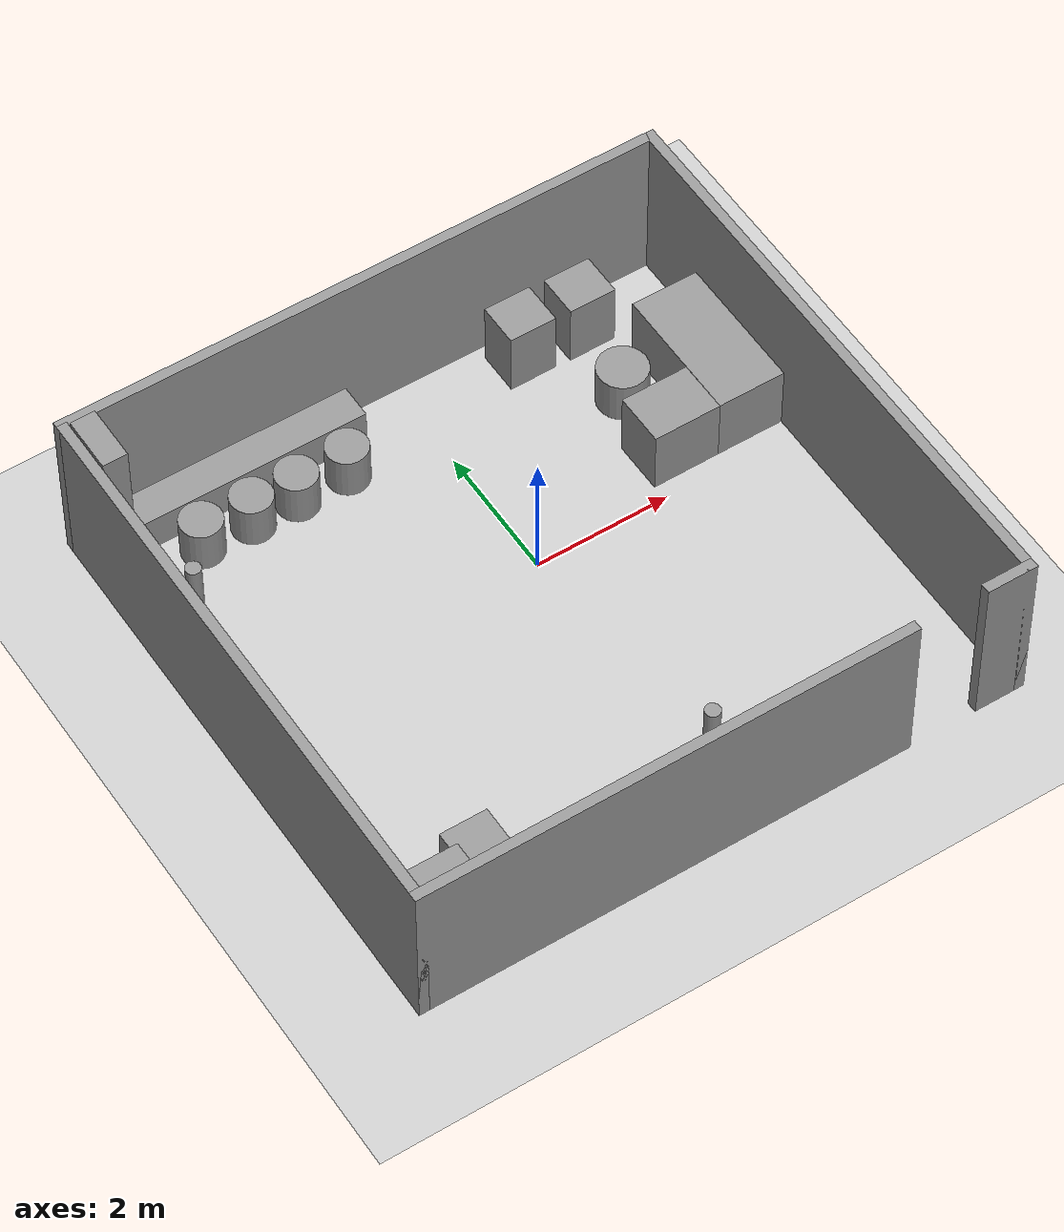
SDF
<sdf version="1.6">
 <world name="default">
  <light name="sun" type="directional">
   <pose>0 0 10 0 -0 0</pose>
   <diffuse>0.8 0.8 0.8 1</diffuse>
   <specular>0.2 0.2 0.2 1</specular>
   <attenuation>
    <range>1000</range>
    <constant>0.9</constant>
    <linear>0.01</linear>
    <quadratic>0.001</quadratic>
   </attenuation>
   <direction>-0.5 0.1 -0.9</direction>
  </light>
  <model name="ground_plane">
   <static>1</static>
   <link name="link">
    <collision name="collision">
     <geometry><plane><normal>0 0 1</normal><size>100 100</size></plane></geometry>
     <surface>
      <contact><collide_bitmask>65535</collide_bitmask></contact>
      <friction><ode><mu>100</mu><mu2>50</mu2></ode></friction>
     </surface>
    </collision>
    <visual name="visual">
     <cast_shadows>0</cast_shadows>
     <geometry><plane><normal>0 0 1</normal><size>100 100</size></plane></geometry>
     <material>
      <script><uri>file://media/materials/scripts/gazebo.material</uri><name>Gazebo/Grey</name></script>
     </material>
    </visual>
   </link>
  </model>
  <gravity>0 0 -9.8</gravity>
  <magnetic_field>6e-06 2.3e-05 -4.2e-05</magnetic_field>
  <atmosphere type="adiabatic"/>
  <physics name="default_physics" default="0" type="ode">
   <max_step_size>0.001</max_step_size>
   <real_time_factor>1</real_time_factor>
   <real_time_update_rate>1000</real_time_update_rate>
  </physics>
  <scene><ambient>0.4 0.4 0.4 1</ambient><background>0.7 0.7 0.7 1</background><shadows>1</shadows></scene>
  <audio><device>default</device></audio>
  <spherical_coordinates>
   <surface_model>EARTH_WGS84</surface_model>
   <latitude_deg>0</latitude_deg>
   <longitude_deg>0</longitude_deg>
   <elevation>0</elevation>
   <heading_deg>0</heading_deg>
  </spherical_coordinates>
  <model name="try2">
   <pose>-0.39709 -0.678514 0 0 -0 0</pose>
   <link name="Wall_13">
    <collision name="Wall_13_Collision">
     <geometry><box><size>8.5 0.15 2.5</size></box></geometry>
     <pose>0 0 1.25 0 -0 0</pose>
    </collision>
    <visual name="Wall_13_Visual">
     <pose>0 0 1.25 0 -0 0</pose>
     <geometry><box><size>8.5 0.15 2.5</size></box></geometry>
     <material>
      <script><uri>file://media/materials/scripts/gazebo.material</uri><name>Gazebo/Grey</name></script>
      <ambient>1 1 1 1</ambient>
     </material>
     <meta><layer>0</layer></meta>
    </visual>
    <pose>-4.425 -0 0 0 -0 -1.5708</pose>
   </link>
   <link name="Wall_14">
    <collision name="Wall_14_Collision">
     <geometry><box><size>7.25 0.15 2.5</size></box></geometry>
     <pose>0 0 1.25 0 -0 0</pose>
    </collision>
    <visual name="Wall_14_Visual">
     <pose>0 0 1.25 0 -0 0</pose>
     <geometry><box><size>7.25 0.15 2.5</size></box></geometry>
     <material>
      <script><uri>file://media/materials/scripts/gazebo.material</uri><name>Gazebo/Grey</name></script>
      <ambient>1 1 1 1</ambient>
     </material>
     <meta><layer>0</layer></meta>
    </visual>
    <pose>-0.875 -4.175 0 0 -0 0</pose>
   </link>
   <link name="Wall_7">
    <collision name="Wall_7_Collision">
     <geometry><box><size>9 0.15 2.5</size></box></geometry>
     <pose>0 0 1.25 0 -0 0</pose>
    </collision>
    <visual name="Wall_7_Visual">
     <pose>0 0 1.25 0 -0 0</pose>
     <geometry><box><size>9 0.15 2.5</size></box></geometry>
     <material>
      <script><uri>file://media/materials/scripts/gazebo.material</uri><name>Gazebo/Grey</name></script>
      <ambient>1 1 1 1</ambient>
     </material>
     <meta><layer>0</layer></meta>
    </visual>
    <pose>0 4.175 0 0 -0 0</pose>
   </link>
   <link name="Wall_8">
    <collision name="Wall_8_Collision">
     <geometry><box><size>8.5 0.15 2.5</size></box></geometry>
     <pose>0 0 1.25 0 -0 0</pose>
    </collision>
    <visual name="Wall_8_Visual">
     <pose>0 0 1.25 0 -0 0</pose>
     <geometry><box><size>8.5 0.15 2.5</size></box></geometry>
     <material>
      <script><uri>file://media/materials/scripts/gazebo.material</uri><name>Gazebo/Grey</name></script>
      <ambient>1 1 1 1</ambient>
     </material>
     <meta><layer>0</layer></meta>
    </visual>
    <pose>4.425 -0 0 0 -0 -1.5708</pose>
   </link>
   <link name="Wall_9">
    <collision name="Wall_9_Collision">
     <geometry><box><size>0.75 0.15 2.5</size></box></geometry>
     <pose>0 0 1.25 0 -0 0</pose>
    </collision>
    <visual name="Wall_9_Visual">
     <pose>0 0 1.25 0 -0 0</pose>
     <geometry><box><size>0.75 0.15 2.5</size></box></geometry>
     <material>
      <script><uri>file://media/materials/scripts/gazebo.material</uri><name>Gazebo/Grey</name></script>
      <ambient>1 1 1 1</ambient>
     </material>
     <meta><layer>0</layer></meta>
    </visual>
    <pose>4.125 -4.175 0 0 -0 3.14159</pose>
   </link>
   <static>1</static>
  </model>
  <model name="unit_cylinder">
   <pose>-4.63017 0.584103 1.31637 0 0 -0.026881</pose>
   <link name="link">
    <inertial>
     <mass>1</mass>
     <inertia><ixx>0.145833</ixx><ixy>0</ixy><ixz>0</ixz><iyy>0.145833</iyy><iyz>0</iyz><izz>0.125</izz></inertia>
    </inertial>
    <collision name="collision">
     <geometry><cylinder><radius>0.10637</radius><length>2.63274</length></cylinder></geometry>
    </collision>
    <visual name="visual">
     <geometry><cylinder><radius>0.10637</radius><length>2.63274</length></cylinder></geometry>
     <material>
      <script><name>Gazebo/Grey</name><uri>file://media/materials/scripts/gazebo.material</uri></script>
     </material>
    </visual>
   </link>
  </model>
  <model name="unit_cylinder_clone">
   <pose>-0.512375 -4.63622 1.32744 0 0 -0.031546</pose>
   <link name="link">
    <inertial>
     <mass>1</mass>
     <inertia><ixx>0.145833</ixx><ixy>0</ixy><ixz>0</ixz><iyy>0.145833</iyy><iyz>0</iyz><izz>0.125</izz></inertia>
    </inertial>
    <collision name="collision">
     <geometry><cylinder><radius>0.10637</radius><length>2.65489</length></cylinder></geometry>
    </collision>
    <visual name="visual">
     <geometry><cylinder><radius>0.10637</radius><length>2.65489</length></cylinder></geometry>
     <material>
      <script><name>Gazebo/Grey</name><uri>file://media/materials/scripts/gazebo.material</uri></script>
     </material>
    </visual>
   </link>
  </model>
  <model name="unit_box">
   <pose>-4.36164 -4.58482 1.15231 -0 -0 -0</pose>
   <link name="link">
    <inertial>
     <mass>1</mass>
     <inertia>
      <ixx>0.166667</ixx>
      <ixy>0</ixy>
      <ixz>0</ixz>
      <iyy>0.166667</iyy>
      <iyz>0</iyz>
      <izz>0.166667</izz>
     </inertia>
    </inertial>
    <collision name="collision"><geometry><box><size>0.770864 0.387383 2.30463</size></box></geometry></collision>
    <visual name="visual">
     <geometry><box><size>0.770864 0.387383 2.30463</size></box></geometry>
     <material>
      <script><name>Gazebo/Grey</name><uri>file://media/materials/scripts/gazebo.material</uri></script>
     </material>
    </visual>
   </link>
  </model>
  <model name="unit_box_0">
   <pose>-3.29241 -4.09603 0.5 0 0 -6e-06</pose>
   <link name="link">
    <inertial>
     <mass>1</mass>
     <inertia>
      <ixx>0.166667</ixx>
      <ixy>0</ixy>
      <ixz>0</ixz>
      <iyy>0.166667</iyy>
      <iyz>0</iyz>
      <izz>0.166667</izz>
     </inertia>
    </inertial>
    <collision name="collision"><geometry><box><size>0.6896 1.36495 1</size></box></geometry></collision>
    <visual name="visual">
     <geometry><box><size>0.6896 1.36495 1</size></box></geometry>
     <material>
      <script><name>Gazebo/Grey</name><uri>file://media/materials/scripts/gazebo.material</uri></script>
     </material>
    </visual>
   </link>
  </model>
  <model name="unit_box_1">
   <pose>2.54615 2.92035 0.5 0 -0 0.000397</pose>
   <link name="link">
    <inertial>
     <mass>1</mass>
     <inertia>
      <ixx>0.166667</ixx>
      <ixy>0</ixy>
      <ixz>0</ixz>
      <iyy>0.166667</iyy>
      <iyz>0</iyz>
      <izz>0.166667</izz>
     </inertia>
    </inertial>
    <collision name="collision"><geometry><box><size>0.698919 0.638929 1</size></box></geometry></collision>
    <visual name="visual">
     <geometry><box><size>0.698919 0.638929 1</size></box></geometry>
     <material>
      <script><name>Gazebo/Grey</name><uri>file://media/materials/scripts/gazebo.material</uri></script>
     </material>
    </visual>
   </link>
  </model>
  <model name="unit_box_3">
   <pose>3.45172 1.25344 0.5 0 -0 0.001146</pose>
   <link name="link">
    <inertial>
     <mass>1</mass>
     <inertia>
      <ixx>0.166667</ixx>
      <ixy>0</ixy>
      <ixz>0</ixz>
      <iyy>0.166667</iyy>
      <iyz>0</iyz>
      <izz>0.166667</izz>
     </inertia>
    </inertial>
    <collision name="collision"><geometry><box><size>1 2.03765 1</size></box></geometry></collision>
    <visual name="visual">
     <geometry><box><size>1 2.03765 1</size></box></geometry>
     <material>
      <script><name>Gazebo/Grey</name><uri>file://media/materials/scripts/gazebo.material</uri></script>
     </material>
    </visual>
   </link>
  </model>
  <model name="unit_box_4">
   <pose>2.45082 0.619018 0.500001 2e-06 -0 0.005303</pose>
   <link name="link">
    <inertial>
     <mass>1</mass>
     <inertia>
      <ixx>0.166667</ixx>
      <ixy>0</ixy>
      <ixz>0</ixz>
      <iyy>0.166667</iyy>
      <iyz>0</iyz>
      <izz>0.166667</izz>
     </inertia>
    </inertial>
    <collision name="collision"><geometry><box><size>1 0.775889 1</size></box></geometry></collision>
    <visual name="visual">
     <geometry><box><size>1 0.775889 1</size></box></geometry>
     <material>
      <script><name>Gazebo/Grey</name><uri>file://media/materials/scripts/gazebo.material</uri></script>
     </material>
    </visual>
   </link>
  </model>
  <model name="unit_box_1_clone">
   <pose>1.62629 2.93056 0.5 0 -0 0.000397</pose>
   <link name="link">
    <inertial>
     <mass>1</mass>
     <inertia>
      <ixx>0.166667</ixx>
      <ixy>0</ixy>
      <ixz>0</ixz>
      <iyy>0.166667</iyy>
      <iyz>0</iyz>
      <izz>0.166667</izz>
     </inertia>
    </inertial>
    <collision name="collision"><geometry><box><size>0.698919 0.638929 1</size></box></geometry></collision>
    <visual name="visual">
     <geometry><box><size>0.698919 0.638929 1</size></box></geometry>
     <material>
      <script><name>Gazebo/Grey</name><uri>file://media/materials/scripts/gazebo.material</uri></script>
     </material>
    </visual>
   </link>
  </model>
  <model name="unit_box_2">
   <pose>-4.56644 2.99576 1.28693 3.14159 -0 1e-06</pose>
   <link name="link">
    <inertial>
     <mass>1</mass>
     <inertia>
      <ixx>0.166667</ixx>
      <ixy>0</ixy>
      <ixz>0</ixz>
      <iyy>0.166667</iyy>
      <iyz>0</iyz>
      <izz>0.166667</izz>
     </inertia>
    </inertial>
    <collision name="collision"><geometry><box><size>0.361265 0.817403 2.57385</size></box></geometry></collision>
    <visual name="visual">
     <geometry><box><size>0.361265 0.817403 2.57385</size></box></geometry>
     <material>
      <script><name>Gazebo/Grey</name><uri>file://media/materials/scripts/gazebo.material</uri></script>
     </material>
    </visual>
   </link>
  </model>
  <model name="unit_box_5">
   <pose>-2.44509 3.16815 0.279828 0 0.000267 -0.000466</pose>
   <link name="link">
    <inertial>
     <mass>1</mass>
     <inertia>
      <ixx>0.166667</ixx>
      <ixy>0</ixy>
      <ixz>0</ixz>
      <iyy>0.166667</iyy>
      <iyz>0</iyz>
      <izz>0.166667</izz>
     </inertia>
    </inertial>
    <collision name="collision"><geometry><box><size>3.35572 0.504546 0.560553</size></box></geometry></collision>
    <visual name="visual">
     <geometry><box><size>3.35572 0.504546 0.560553</size></box></geometry>
     <material>
      <script><name>Gazebo/Grey</name><uri>file://media/materials/scripts/gazebo.material</uri></script>
     </material>
    </visual>
   </link>
  </model>
  <model name="unit_cylinder_0">
   <pose>2.41652 1.69135 0.325526 -3e-06 -3e-06 0</pose>
   <link name="link">
    <inertial>
     <mass>1</mass>
     <inertia><ixx>0.145833</ixx><ixy>0</ixy><ixz>0</ixz><iyy>0.145833</iyy><iyz>0</iyz><izz>0.125</izz></inertia>
    </inertial>
    <collision name="collision">
     <geometry><cylinder><radius>0.361322</radius><length>0.651067</length></cylinder></geometry>
    </collision>
    <visual name="visual">
     <geometry><cylinder><radius>0.361322</radius><length>0.651067</length></cylinder></geometry>
     <material>
      <script><name>Gazebo/Grey</name><uri>file://media/materials/scripts/gazebo.material</uri></script>
     </material>
    </visual>
   </link>
  </model>
  <model name="unit_cylinder_0_clone">
   <pose>-1.29136 2.53482 0.325524 0 -0 0</pose>
   <link name="link">
    <inertial>
     <mass>1</mass>
     <inertia><ixx>0.145833</ixx><ixy>0</ixy><ixz>0</ixz><iyy>0.145833</iyy><iyz>0</iyz><izz>0.125</izz></inertia>
    </inertial>
    <collision name="collision">
     <geometry><cylinder><radius>0.301077</radius><length>0.651067</length></cylinder></geometry>
    </collision>
    <visual name="visual">
     <geometry><cylinder><radius>0.301077</radius><length>0.651067</length></cylinder></geometry>
     <material>
      <script><name>Gazebo/Grey</name><uri>file://media/materials/scripts/gazebo.material</uri></script>
     </material>
    </visual>
   </link>
  </model>
  <model name="unit_cylinder_0_clone_clone">
   <pose>-2.06578 2.51933 0.325533 0 -0 0</pose>
   <link name="link">
    <inertial>
     <mass>1</mass>
     <inertia><ixx>0.145833</ixx><ixy>0</ixy><ixz>0</ixz><iyy>0.145833</iyy><iyz>0</iyz><izz>0.125</izz></inertia>
    </inertial>
    <collision name="collision">
     <geometry><cylinder><radius>0.301077</radius><length>0.651067</length></cylinder></geometry>
    </collision>
    <visual name="visual">
     <geometry><cylinder><radius>0.301077</radius><length>0.651067</length></cylinder></geometry>
     <material>
      <script><name>Gazebo/Grey</name><uri>file://media/materials/scripts/gazebo.material</uri></script>
     </material>
    </visual>
   </link>
  </model>
  <model name="unit_cylinder_0_clone_clone_0">
   <pose>-2.73971 2.51856 0.325524 0 -0 0</pose>
   <link name="link">
    <inertial>
     <mass>1</mass>
     <inertia><ixx>0.145833</ixx><ixy>0</ixy><ixz>0</ixz><iyy>0.145833</iyy><iyz>0</iyz><izz>0.125</izz></inertia>
    </inertial>
    <collision name="collision">
     <geometry><cylinder><radius>0.301077</radius><length>0.651067</length></cylinder></geometry>
    </collision>
    <visual name="visual">
     <geometry><cylinder><radius>0.301077</radius><length>0.651067</length></cylinder></geometry>
     <material>
      <script><name>Gazebo/Grey</name><uri>file://media/materials/scripts/gazebo.material</uri></script>
     </material>
    </visual>
   </link>
  </model>
  <model name="unit_cylinder_0_clone_clone_1">
   <pose>-3.48061 2.53557 0.325533 0 -0 0</pose>
   <link name="link">
    <inertial>
     <mass>1</mass>
     <inertia><ixx>0.145833</ixx><ixy>0</ixy><ixz>0</ixz><iyy>0.145833</iyy><iyz>0</iyz><izz>0.125</izz></inertia>
    </inertial>
    <collision name="collision">
     <geometry><cylinder><radius>0.301077</radius><length>0.651067</length></cylinder></geometry>
    </collision>
    <visual name="visual">
     <geometry><cylinder><radius>0.301077</radius><length>0.651067</length></cylinder></geometry>
     <material>
      <script><name>Gazebo/Grey</name><uri>file://media/materials/scripts/gazebo.material</uri></script>
     </material>
    </visual>
   </link>
  </model>
 </world>
</sdf>
